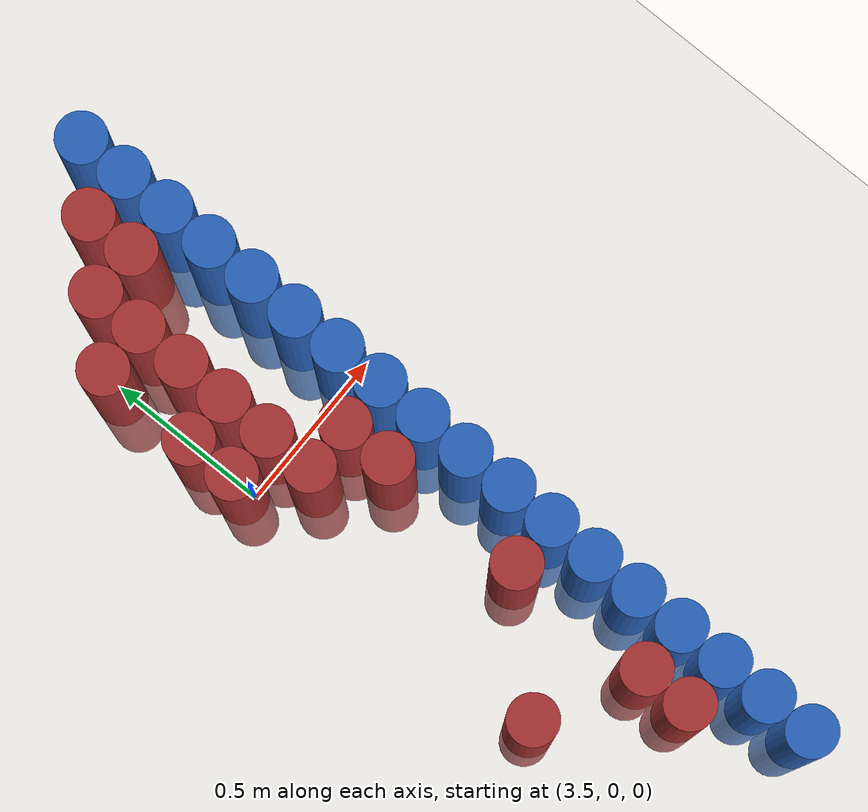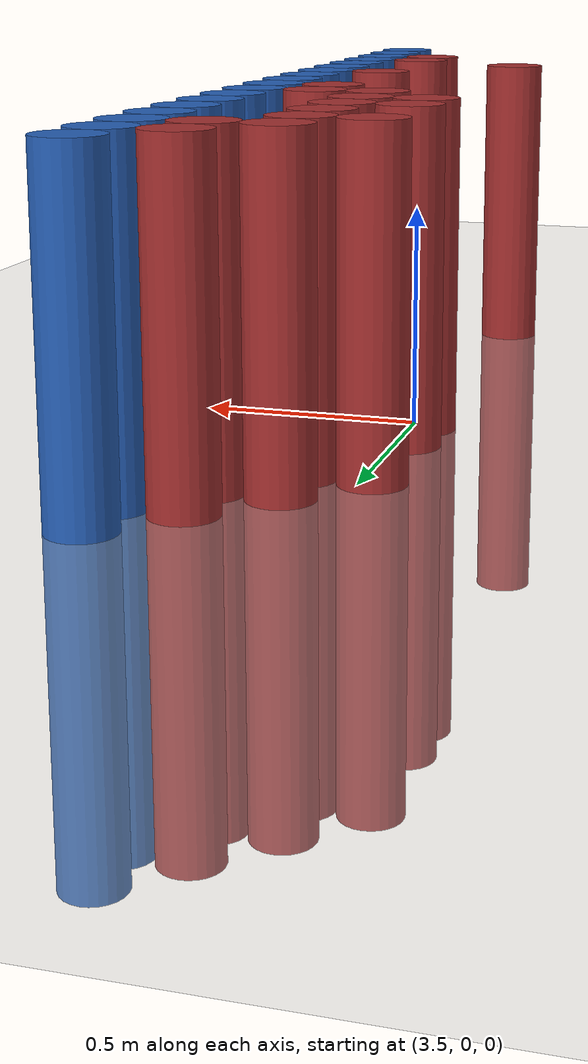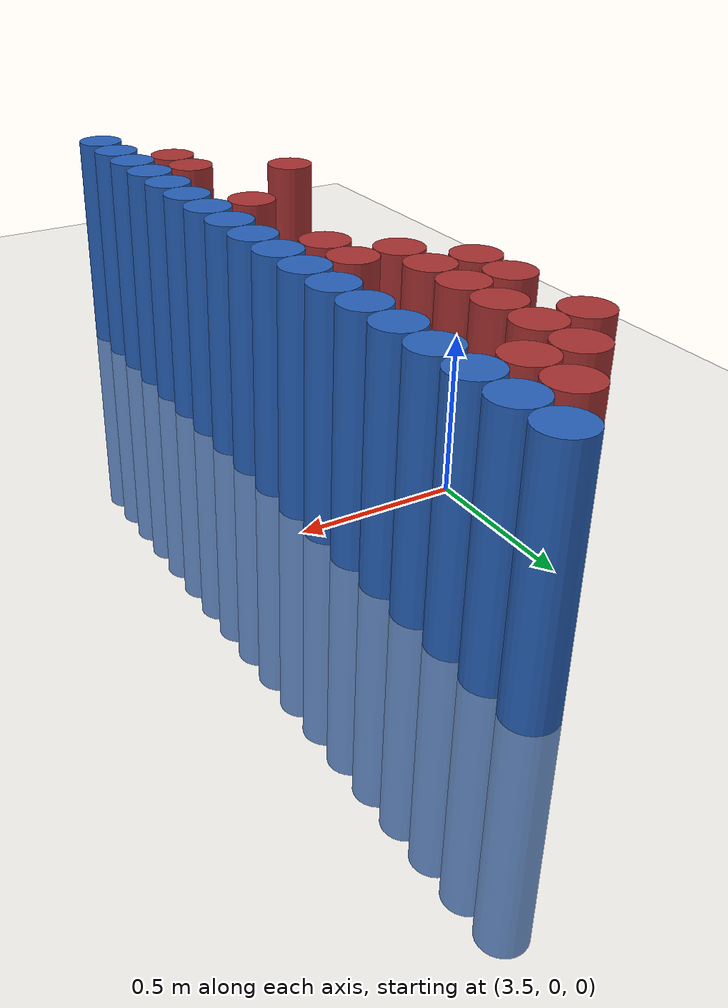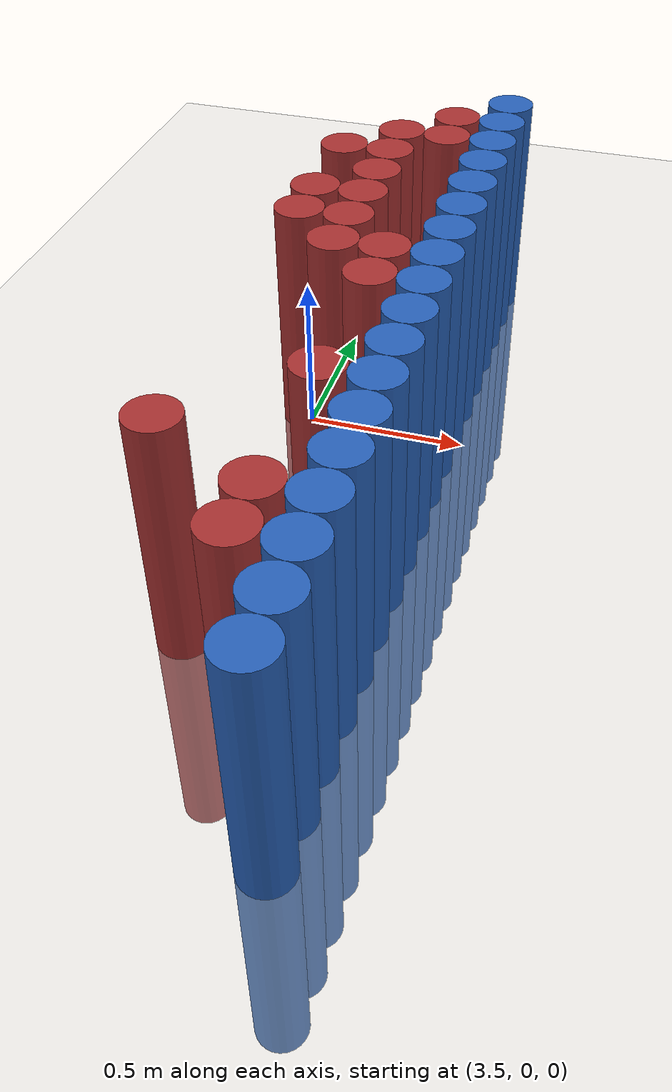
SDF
<sdf version="1.6">
 <world name="default">
  <model name="ground_plane">
   <static>1</static>
   <link name="link">
    <collision name="collision">
     <geometry><plane><normal>0 0 1</normal><size>100 100</size></plane></geometry>
     <surface><friction><ode><mu>100</mu><mu2>50</mu2></ode></friction></surface>
    </collision>
    <visual name="visual">
     <cast_shadows>0</cast_shadows>
     <geometry><plane><normal>0 0 1</normal><size>100 100</size></plane></geometry>
     <material>
      <script><uri>file://media/materials/scripts/gazebo.material</uri><name>Gazebo/Grey</name></script>
     </material>
    </visual>
   </link>
  </model>
  <model name="unit_cylinder_92">
   <static>1</static>
   <pose>3.925000 -1.625000 0.000000 0.000000 0.000000 0.000000</pose>
   <link name="link">
    <inertial>
     <mass>1</mass>
     <inertia><ixx>0.145833</ixx><ixy>0</ixy><ixz>0</ixz><iyy>0.145833</iyy><iyz>0</iyz><izz>0.125</izz></inertia>
    </inertial>
    <collision name="collision">
     <geometry><cylinder><radius>0.075000</radius><length>1.5</length></cylinder></geometry>
    </collision>
    <visual name="visual">
     <geometry><cylinder><radius>0.075000</radius><length>1.5</length></cylinder></geometry>
     <material>
      <ambient>0.152000 0.379000 0.720000 1</ambient>
      <diffuse>0.152000 0.379000 0.720000 1</diffuse>
     </material>
     <material>
      <script><name>Gazebo/Grey</name><uri>file://media/materials/scripts/gazebo.material</uri></script>
     </material>
    </visual>
   </link>
  </model>
  <model name="unit_cylinder_94">
   <static>1</static>
   <pose>3.925000 -1.475000 0.000000 0.000000 0.000000 0.000000</pose>
   <link name="link">
    <inertial>
     <mass>1</mass>
     <inertia><ixx>0.145833</ixx><ixy>0</ixy><ixz>0</ixz><iyy>0.145833</iyy><iyz>0</iyz><izz>0.125</izz></inertia>
    </inertial>
    <collision name="collision">
     <geometry><cylinder><radius>0.075000</radius><length>1.5</length></cylinder></geometry>
    </collision>
    <visual name="visual">
     <geometry><cylinder><radius>0.075000</radius><length>1.5</length></cylinder></geometry>
     <material>
      <ambient>0.152000 0.379000 0.720000 1</ambient>
      <diffuse>0.152000 0.379000 0.720000 1</diffuse>
     </material>
     <material>
      <script><name>Gazebo/Grey</name><uri>file://media/materials/scripts/gazebo.material</uri></script>
     </material>
    </visual>
   </link>
  </model>
  <model name="unit_cylinder_96">
   <static>1</static>
   <pose>3.925000 -1.325000 0.000000 0.000000 0.000000 0.000000</pose>
   <link name="link">
    <inertial>
     <mass>1</mass>
     <inertia><ixx>0.145833</ixx><ixy>0</ixy><ixz>0</ixz><iyy>0.145833</iyy><iyz>0</iyz><izz>0.125</izz></inertia>
    </inertial>
    <collision name="collision">
     <geometry><cylinder><radius>0.075000</radius><length>1.5</length></cylinder></geometry>
    </collision>
    <visual name="visual">
     <geometry><cylinder><radius>0.075000</radius><length>1.5</length></cylinder></geometry>
     <material>
      <ambient>0.152000 0.379000 0.720000 1</ambient>
      <diffuse>0.152000 0.379000 0.720000 1</diffuse>
     </material>
     <material>
      <script><name>Gazebo/Grey</name><uri>file://media/materials/scripts/gazebo.material</uri></script>
     </material>
    </visual>
   </link>
  </model>
  <model name="unit_cylinder_98">
   <static>1</static>
   <pose>3.925000 -1.175000 0.000000 0.000000 0.000000 0.000000</pose>
   <link name="link">
    <inertial>
     <mass>1</mass>
     <inertia><ixx>0.145833</ixx><ixy>0</ixy><ixz>0</ixz><iyy>0.145833</iyy><iyz>0</iyz><izz>0.125</izz></inertia>
    </inertial>
    <collision name="collision">
     <geometry><cylinder><radius>0.075000</radius><length>1.5</length></cylinder></geometry>
    </collision>
    <visual name="visual">
     <geometry><cylinder><radius>0.075000</radius><length>1.5</length></cylinder></geometry>
     <material>
      <ambient>0.152000 0.379000 0.720000 1</ambient>
      <diffuse>0.152000 0.379000 0.720000 1</diffuse>
     </material>
     <material>
      <script><name>Gazebo/Grey</name><uri>file://media/materials/scripts/gazebo.material</uri></script>
     </material>
    </visual>
   </link>
  </model>
  <model name="unit_cylinder_100">
   <static>1</static>
   <pose>3.925000 -1.025000 0.000000 0.000000 0.000000 0.000000</pose>
   <link name="link">
    <inertial>
     <mass>1</mass>
     <inertia><ixx>0.145833</ixx><ixy>0</ixy><ixz>0</ixz><iyy>0.145833</iyy><iyz>0</iyz><izz>0.125</izz></inertia>
    </inertial>
    <collision name="collision">
     <geometry><cylinder><radius>0.075000</radius><length>1.5</length></cylinder></geometry>
    </collision>
    <visual name="visual">
     <geometry><cylinder><radius>0.075000</radius><length>1.5</length></cylinder></geometry>
     <material>
      <ambient>0.152000 0.379000 0.720000 1</ambient>
      <diffuse>0.152000 0.379000 0.720000 1</diffuse>
     </material>
     <material>
      <script><name>Gazebo/Grey</name><uri>file://media/materials/scripts/gazebo.material</uri></script>
     </material>
    </visual>
   </link>
  </model>
  <model name="unit_cylinder_102">
   <static>1</static>
   <pose>3.925000 -0.875000 0.000000 0.000000 0.000000 0.000000</pose>
   <link name="link">
    <inertial>
     <mass>1</mass>
     <inertia><ixx>0.145833</ixx><ixy>0</ixy><ixz>0</ixz><iyy>0.145833</iyy><iyz>0</iyz><izz>0.125</izz></inertia>
    </inertial>
    <collision name="collision">
     <geometry><cylinder><radius>0.075000</radius><length>1.5</length></cylinder></geometry>
    </collision>
    <visual name="visual">
     <geometry><cylinder><radius>0.075000</radius><length>1.5</length></cylinder></geometry>
     <material>
      <ambient>0.152000 0.379000 0.720000 1</ambient>
      <diffuse>0.152000 0.379000 0.720000 1</diffuse>
     </material>
     <material>
      <script><name>Gazebo/Grey</name><uri>file://media/materials/scripts/gazebo.material</uri></script>
     </material>
    </visual>
   </link>
  </model>
  <model name="unit_cylinder_104">
   <static>1</static>
   <pose>3.925000 -0.725000 0.000000 0.000000 0.000000 0.000000</pose>
   <link name="link">
    <inertial>
     <mass>1</mass>
     <inertia><ixx>0.145833</ixx><ixy>0</ixy><ixz>0</ixz><iyy>0.145833</iyy><iyz>0</iyz><izz>0.125</izz></inertia>
    </inertial>
    <collision name="collision">
     <geometry><cylinder><radius>0.075000</radius><length>1.5</length></cylinder></geometry>
    </collision>
    <visual name="visual">
     <geometry><cylinder><radius>0.075000</radius><length>1.5</length></cylinder></geometry>
     <material>
      <ambient>0.152000 0.379000 0.720000 1</ambient>
      <diffuse>0.152000 0.379000 0.720000 1</diffuse>
     </material>
     <material>
      <script><name>Gazebo/Grey</name><uri>file://media/materials/scripts/gazebo.material</uri></script>
     </material>
    </visual>
   </link>
  </model>
  <model name="unit_cylinder_106">
   <static>1</static>
   <pose>3.925000 -0.575000 0.000000 0.000000 0.000000 0.000000</pose>
   <link name="link">
    <inertial>
     <mass>1</mass>
     <inertia><ixx>0.145833</ixx><ixy>0</ixy><ixz>0</ixz><iyy>0.145833</iyy><iyz>0</iyz><izz>0.125</izz></inertia>
    </inertial>
    <collision name="collision">
     <geometry><cylinder><radius>0.075000</radius><length>1.5</length></cylinder></geometry>
    </collision>
    <visual name="visual">
     <geometry><cylinder><radius>0.075000</radius><length>1.5</length></cylinder></geometry>
     <material>
      <ambient>0.152000 0.379000 0.720000 1</ambient>
      <diffuse>0.152000 0.379000 0.720000 1</diffuse>
     </material>
     <material>
      <script><name>Gazebo/Grey</name><uri>file://media/materials/scripts/gazebo.material</uri></script>
     </material>
    </visual>
   </link>
  </model>
  <model name="unit_cylinder_108">
   <static>1</static>
   <pose>3.925000 -0.425000 0.000000 0.000000 0.000000 0.000000</pose>
   <link name="link">
    <inertial>
     <mass>1</mass>
     <inertia><ixx>0.145833</ixx><ixy>0</ixy><ixz>0</ixz><iyy>0.145833</iyy><iyz>0</iyz><izz>0.125</izz></inertia>
    </inertial>
    <collision name="collision">
     <geometry><cylinder><radius>0.075000</radius><length>1.5</length></cylinder></geometry>
    </collision>
    <visual name="visual">
     <geometry><cylinder><radius>0.075000</radius><length>1.5</length></cylinder></geometry>
     <material>
      <ambient>0.152000 0.379000 0.720000 1</ambient>
      <diffuse>0.152000 0.379000 0.720000 1</diffuse>
     </material>
     <material>
      <script><name>Gazebo/Grey</name><uri>file://media/materials/scripts/gazebo.material</uri></script>
     </material>
    </visual>
   </link>
  </model>
  <model name="unit_cylinder_110">
   <static>1</static>
   <pose>3.925000 -0.275000 0.000000 0.000000 0.000000 0.000000</pose>
   <link name="link">
    <inertial>
     <mass>1</mass>
     <inertia><ixx>0.145833</ixx><ixy>0</ixy><ixz>0</ixz><iyy>0.145833</iyy><iyz>0</iyz><izz>0.125</izz></inertia>
    </inertial>
    <collision name="collision">
     <geometry><cylinder><radius>0.075000</radius><length>1.5</length></cylinder></geometry>
    </collision>
    <visual name="visual">
     <geometry><cylinder><radius>0.075000</radius><length>1.5</length></cylinder></geometry>
     <material>
      <ambient>0.152000 0.379000 0.720000 1</ambient>
      <diffuse>0.152000 0.379000 0.720000 1</diffuse>
     </material>
     <material>
      <script><name>Gazebo/Grey</name><uri>file://media/materials/scripts/gazebo.material</uri></script>
     </material>
    </visual>
   </link>
  </model>
  <model name="unit_cylinder_112">
   <static>1</static>
   <pose>3.925000 -0.125000 0.000000 0.000000 0.000000 0.000000</pose>
   <link name="link">
    <inertial>
     <mass>1</mass>
     <inertia><ixx>0.145833</ixx><ixy>0</ixy><ixz>0</ixz><iyy>0.145833</iyy><iyz>0</iyz><izz>0.125</izz></inertia>
    </inertial>
    <collision name="collision">
     <geometry><cylinder><radius>0.075000</radius><length>1.5</length></cylinder></geometry>
    </collision>
    <visual name="visual">
     <geometry><cylinder><radius>0.075000</radius><length>1.5</length></cylinder></geometry>
     <material>
      <ambient>0.152000 0.379000 0.720000 1</ambient>
      <diffuse>0.152000 0.379000 0.720000 1</diffuse>
     </material>
     <material>
      <script><name>Gazebo/Grey</name><uri>file://media/materials/scripts/gazebo.material</uri></script>
     </material>
    </visual>
   </link>
  </model>
  <model name="unit_cylinder_114">
   <static>1</static>
   <pose>3.925000 0.025000 0.000000 0.000000 0.000000 0.000000</pose>
   <link name="link">
    <inertial>
     <mass>1</mass>
     <inertia><ixx>0.145833</ixx><ixy>0</ixy><ixz>0</ixz><iyy>0.145833</iyy><iyz>0</iyz><izz>0.125</izz></inertia>
    </inertial>
    <collision name="collision">
     <geometry><cylinder><radius>0.075000</radius><length>1.5</length></cylinder></geometry>
    </collision>
    <visual name="visual">
     <geometry><cylinder><radius>0.075000</radius><length>1.5</length></cylinder></geometry>
     <material>
      <ambient>0.152000 0.379000 0.720000 1</ambient>
      <diffuse>0.152000 0.379000 0.720000 1</diffuse>
     </material>
     <material>
      <script><name>Gazebo/Grey</name><uri>file://media/materials/scripts/gazebo.material</uri></script>
     </material>
    </visual>
   </link>
  </model>
  <model name="unit_cylinder_116">
   <static>1</static>
   <pose>3.925000 0.175000 0.000000 0.000000 0.000000 0.000000</pose>
   <link name="link">
    <inertial>
     <mass>1</mass>
     <inertia><ixx>0.145833</ixx><ixy>0</ixy><ixz>0</ixz><iyy>0.145833</iyy><iyz>0</iyz><izz>0.125</izz></inertia>
    </inertial>
    <collision name="collision">
     <geometry><cylinder><radius>0.075000</radius><length>1.5</length></cylinder></geometry>
    </collision>
    <visual name="visual">
     <geometry><cylinder><radius>0.075000</radius><length>1.5</length></cylinder></geometry>
     <material>
      <ambient>0.152000 0.379000 0.720000 1</ambient>
      <diffuse>0.152000 0.379000 0.720000 1</diffuse>
     </material>
     <material>
      <script><name>Gazebo/Grey</name><uri>file://media/materials/scripts/gazebo.material</uri></script>
     </material>
    </visual>
   </link>
  </model>
  <model name="unit_cylinder_118">
   <static>1</static>
   <pose>3.925000 0.325000 0.000000 0.000000 0.000000 0.000000</pose>
   <link name="link">
    <inertial>
     <mass>1</mass>
     <inertia><ixx>0.145833</ixx><ixy>0</ixy><ixz>0</ixz><iyy>0.145833</iyy><iyz>0</iyz><izz>0.125</izz></inertia>
    </inertial>
    <collision name="collision">
     <geometry><cylinder><radius>0.075000</radius><length>1.5</length></cylinder></geometry>
    </collision>
    <visual name="visual">
     <geometry><cylinder><radius>0.075000</radius><length>1.5</length></cylinder></geometry>
     <material>
      <ambient>0.152000 0.379000 0.720000 1</ambient>
      <diffuse>0.152000 0.379000 0.720000 1</diffuse>
     </material>
     <material>
      <script><name>Gazebo/Grey</name><uri>file://media/materials/scripts/gazebo.material</uri></script>
     </material>
    </visual>
   </link>
  </model>
  <model name="unit_cylinder_120">
   <static>1</static>
   <pose>3.925000 0.475000 0.000000 0.000000 0.000000 0.000000</pose>
   <link name="link">
    <inertial>
     <mass>1</mass>
     <inertia><ixx>0.145833</ixx><ixy>0</ixy><ixz>0</ixz><iyy>0.145833</iyy><iyz>0</iyz><izz>0.125</izz></inertia>
    </inertial>
    <collision name="collision">
     <geometry><cylinder><radius>0.075000</radius><length>1.5</length></cylinder></geometry>
    </collision>
    <visual name="visual">
     <geometry><cylinder><radius>0.075000</radius><length>1.5</length></cylinder></geometry>
     <material>
      <ambient>0.152000 0.379000 0.720000 1</ambient>
      <diffuse>0.152000 0.379000 0.720000 1</diffuse>
     </material>
     <material>
      <script><name>Gazebo/Grey</name><uri>file://media/materials/scripts/gazebo.material</uri></script>
     </material>
    </visual>
   </link>
  </model>
  <model name="unit_cylinder_122">
   <static>1</static>
   <pose>3.925000 0.625000 0.000000 0.000000 0.000000 0.000000</pose>
   <link name="link">
    <inertial>
     <mass>1</mass>
     <inertia><ixx>0.145833</ixx><ixy>0</ixy><ixz>0</ixz><iyy>0.145833</iyy><iyz>0</iyz><izz>0.125</izz></inertia>
    </inertial>
    <collision name="collision">
     <geometry><cylinder><radius>0.075000</radius><length>1.5</length></cylinder></geometry>
    </collision>
    <visual name="visual">
     <geometry><cylinder><radius>0.075000</radius><length>1.5</length></cylinder></geometry>
     <material>
      <ambient>0.152000 0.379000 0.720000 1</ambient>
      <diffuse>0.152000 0.379000 0.720000 1</diffuse>
     </material>
     <material>
      <script><name>Gazebo/Grey</name><uri>file://media/materials/scripts/gazebo.material</uri></script>
     </material>
    </visual>
   </link>
  </model>
  <model name="unit_cylinder_124">
   <static>1</static>
   <pose>3.925000 0.775000 0.000000 0.000000 0.000000 0.000000</pose>
   <link name="link">
    <inertial>
     <mass>1</mass>
     <inertia><ixx>0.145833</ixx><ixy>0</ixy><ixz>0</ixz><iyy>0.145833</iyy><iyz>0</iyz><izz>0.125</izz></inertia>
    </inertial>
    <collision name="collision">
     <geometry><cylinder><radius>0.075000</radius><length>1.5</length></cylinder></geometry>
    </collision>
    <visual name="visual">
     <geometry><cylinder><radius>0.075000</radius><length>1.5</length></cylinder></geometry>
     <material>
      <ambient>0.152000 0.379000 0.720000 1</ambient>
      <diffuse>0.152000 0.379000 0.720000 1</diffuse>
     </material>
     <material>
      <script><name>Gazebo/Grey</name><uri>file://media/materials/scripts/gazebo.material</uri></script>
     </material>
    </visual>
   </link>
  </model>
  <model name="unit_cylinder_126">
   <static>1</static>
   <pose>3.925000 0.925000 0.000000 0.000000 0.000000 0.000000</pose>
   <link name="link">
    <inertial>
     <mass>1</mass>
     <inertia><ixx>0.145833</ixx><ixy>0</ixy><ixz>0</ixz><iyy>0.145833</iyy><iyz>0</iyz><izz>0.125</izz></inertia>
    </inertial>
    <collision name="collision">
     <geometry><cylinder><radius>0.075000</radius><length>1.5</length></cylinder></geometry>
    </collision>
    <visual name="visual">
     <geometry><cylinder><radius>0.075000</radius><length>1.5</length></cylinder></geometry>
     <material>
      <ambient>0.152000 0.379000 0.720000 1</ambient>
      <diffuse>0.152000 0.379000 0.720000 1</diffuse>
     </material>
     <material>
      <script><name>Gazebo/Grey</name><uri>file://media/materials/scripts/gazebo.material</uri></script>
     </material>
    </visual>
   </link>
  </model>
  <model name="unit_cylinder_589">
   <static>1</static>
   <pose>3.475000 -1.025000 0.000000 0.000000 0.000000 0.000000</pose>
   <link name="link">
    <inertial>
     <mass>1</mass>
     <inertia><ixx>0.145833</ixx><ixy>0</ixy><ixz>0</ixz><iyy>0.145833</iyy><iyz>0</iyz><izz>0.125</izz></inertia>
    </inertial>
    <collision name="collision">
     <geometry><cylinder><radius>0.075000</radius><length>1.5</length></cylinder></geometry>
    </collision>
    <visual name="visual">
     <geometry><cylinder><radius>0.075000</radius><length>1.5</length></cylinder></geometry>
     <material>
      <ambient>0.648000 0.192000 0.192000 1</ambient>
      <diffuse>0.648000 0.192000 0.192000 1</diffuse>
     </material>
     <material>
      <script><name>Gazebo/Grey</name><uri>file://media/materials/scripts/gazebo.material</uri></script>
     </material>
    </visual>
   </link>
  </model>
  <model name="unit_cylinder_590">
   <static>1</static>
   <pose>3.475000 0.025000 0.000000 0.000000 0.000000 0.000000</pose>
   <link name="link">
    <inertial>
     <mass>1</mass>
     <inertia><ixx>0.145833</ixx><ixy>0</ixy><ixz>0</ixz><iyy>0.145833</iyy><iyz>0</iyz><izz>0.125</izz></inertia>
    </inertial>
    <collision name="collision">
     <geometry><cylinder><radius>0.075000</radius><length>1.5</length></cylinder></geometry>
    </collision>
    <visual name="visual">
     <geometry><cylinder><radius>0.075000</radius><length>1.5</length></cylinder></geometry>
     <material>
      <ambient>0.648000 0.192000 0.192000 1</ambient>
      <diffuse>0.648000 0.192000 0.192000 1</diffuse>
     </material>
     <material>
      <script><name>Gazebo/Grey</name><uri>file://media/materials/scripts/gazebo.material</uri></script>
     </material>
    </visual>
   </link>
  </model>
  <model name="unit_cylinder_591">
   <static>1</static>
   <pose>3.475000 0.175000 0.000000 0.000000 0.000000 0.000000</pose>
   <link name="link">
    <inertial>
     <mass>1</mass>
     <inertia><ixx>0.145833</ixx><ixy>0</ixy><ixz>0</ixz><iyy>0.145833</iyy><iyz>0</iyz><izz>0.125</izz></inertia>
    </inertial>
    <collision name="collision">
     <geometry><cylinder><radius>0.075000</radius><length>1.5</length></cylinder></geometry>
    </collision>
    <visual name="visual">
     <geometry><cylinder><radius>0.075000</radius><length>1.5</length></cylinder></geometry>
     <material>
      <ambient>0.648000 0.192000 0.192000 1</ambient>
      <diffuse>0.648000 0.192000 0.192000 1</diffuse>
     </material>
     <material>
      <script><name>Gazebo/Grey</name><uri>file://media/materials/scripts/gazebo.material</uri></script>
     </material>
    </visual>
   </link>
  </model>
  <model name="unit_cylinder_592">
   <static>1</static>
   <pose>3.475000 0.475000 0.000000 0.000000 0.000000 0.000000</pose>
   <link name="link">
    <inertial>
     <mass>1</mass>
     <inertia><ixx>0.145833</ixx><ixy>0</ixy><ixz>0</ixz><iyy>0.145833</iyy><iyz>0</iyz><izz>0.125</izz></inertia>
    </inertial>
    <collision name="collision">
     <geometry><cylinder><radius>0.075000</radius><length>1.5</length></cylinder></geometry>
    </collision>
    <visual name="visual">
     <geometry><cylinder><radius>0.075000</radius><length>1.5</length></cylinder></geometry>
     <material>
      <ambient>0.648000 0.192000 0.192000 1</ambient>
      <diffuse>0.648000 0.192000 0.192000 1</diffuse>
     </material>
     <material>
      <script><name>Gazebo/Grey</name><uri>file://media/materials/scripts/gazebo.material</uri></script>
     </material>
    </visual>
   </link>
  </model>
  <model name="unit_cylinder_593">
   <static>1</static>
   <pose>3.625000 -0.125000 0.000000 0.000000 0.000000 0.000000</pose>
   <link name="link">
    <inertial>
     <mass>1</mass>
     <inertia><ixx>0.145833</ixx><ixy>0</ixy><ixz>0</ixz><iyy>0.145833</iyy><iyz>0</iyz><izz>0.125</izz></inertia>
    </inertial>
    <collision name="collision">
     <geometry><cylinder><radius>0.075000</radius><length>1.5</length></cylinder></geometry>
    </collision>
    <visual name="visual">
     <geometry><cylinder><radius>0.075000</radius><length>1.5</length></cylinder></geometry>
     <material>
      <ambient>0.648000 0.192000 0.192000 1</ambient>
      <diffuse>0.648000 0.192000 0.192000 1</diffuse>
     </material>
     <material>
      <script><name>Gazebo/Grey</name><uri>file://media/materials/scripts/gazebo.material</uri></script>
     </material>
    </visual>
   </link>
  </model>
  <model name="unit_cylinder_594">
   <static>1</static>
   <pose>3.625000 0.025000 0.000000 0.000000 0.000000 0.000000</pose>
   <link name="link">
    <inertial>
     <mass>1</mass>
     <inertia><ixx>0.145833</ixx><ixy>0</ixy><ixz>0</ixz><iyy>0.145833</iyy><iyz>0</iyz><izz>0.125</izz></inertia>
    </inertial>
    <collision name="collision">
     <geometry><cylinder><radius>0.075000</radius><length>1.5</length></cylinder></geometry>
    </collision>
    <visual name="visual">
     <geometry><cylinder><radius>0.075000</radius><length>1.5</length></cylinder></geometry>
     <material>
      <ambient>0.648000 0.192000 0.192000 1</ambient>
      <diffuse>0.648000 0.192000 0.192000 1</diffuse>
     </material>
     <material>
      <script><name>Gazebo/Grey</name><uri>file://media/materials/scripts/gazebo.material</uri></script>
     </material>
    </visual>
   </link>
  </model>
  <model name="unit_cylinder_595">
   <static>1</static>
   <pose>3.625000 0.175000 0.000000 0.000000 0.000000 0.000000</pose>
   <link name="link">
    <inertial>
     <mass>1</mass>
     <inertia><ixx>0.145833</ixx><ixy>0</ixy><ixz>0</ixz><iyy>0.145833</iyy><iyz>0</iyz><izz>0.125</izz></inertia>
    </inertial>
    <collision name="collision">
     <geometry><cylinder><radius>0.075000</radius><length>1.5</length></cylinder></geometry>
    </collision>
    <visual name="visual">
     <geometry><cylinder><radius>0.075000</radius><length>1.5</length></cylinder></geometry>
     <material>
      <ambient>0.648000 0.192000 0.192000 1</ambient>
      <diffuse>0.648000 0.192000 0.192000 1</diffuse>
     </material>
     <material>
      <script><name>Gazebo/Grey</name><uri>file://media/materials/scripts/gazebo.material</uri></script>
     </material>
    </visual>
   </link>
  </model>
  <model name="unit_cylinder_596">
   <static>1</static>
   <pose>3.625000 0.325000 0.000000 0.000000 0.000000 0.000000</pose>
   <link name="link">
    <inertial>
     <mass>1</mass>
     <inertia><ixx>0.145833</ixx><ixy>0</ixy><ixz>0</ixz><iyy>0.145833</iyy><iyz>0</iyz><izz>0.125</izz></inertia>
    </inertial>
    <collision name="collision">
     <geometry><cylinder><radius>0.075000</radius><length>1.5</length></cylinder></geometry>
    </collision>
    <visual name="visual">
     <geometry><cylinder><radius>0.075000</radius><length>1.5</length></cylinder></geometry>
     <material>
      <ambient>0.648000 0.192000 0.192000 1</ambient>
      <diffuse>0.648000 0.192000 0.192000 1</diffuse>
     </material>
     <material>
      <script><name>Gazebo/Grey</name><uri>file://media/materials/scripts/gazebo.material</uri></script>
     </material>
    </visual>
   </link>
  </model>
  <model name="unit_cylinder_597">
   <static>1</static>
   <pose>3.625000 0.475000 0.000000 0.000000 0.000000 0.000000</pose>
   <link name="link">
    <inertial>
     <mass>1</mass>
     <inertia><ixx>0.145833</ixx><ixy>0</ixy><ixz>0</ixz><iyy>0.145833</iyy><iyz>0</iyz><izz>0.125</izz></inertia>
    </inertial>
    <collision name="collision">
     <geometry><cylinder><radius>0.075000</radius><length>1.5</length></cylinder></geometry>
    </collision>
    <visual name="visual">
     <geometry><cylinder><radius>0.075000</radius><length>1.5</length></cylinder></geometry>
     <material>
      <ambient>0.648000 0.192000 0.192000 1</ambient>
      <diffuse>0.648000 0.192000 0.192000 1</diffuse>
     </material>
     <material>
      <script><name>Gazebo/Grey</name><uri>file://media/materials/scripts/gazebo.material</uri></script>
     </material>
    </visual>
   </link>
  </model>
  <model name="unit_cylinder_598">
   <static>1</static>
   <pose>3.625000 0.625000 0.000000 0.000000 0.000000 0.000000</pose>
   <link name="link">
    <inertial>
     <mass>1</mass>
     <inertia><ixx>0.145833</ixx><ixy>0</ixy><ixz>0</ixz><iyy>0.145833</iyy><iyz>0</iyz><izz>0.125</izz></inertia>
    </inertial>
    <collision name="collision">
     <geometry><cylinder><radius>0.075000</radius><length>1.5</length></cylinder></geometry>
    </collision>
    <visual name="visual">
     <geometry><cylinder><radius>0.075000</radius><length>1.5</length></cylinder></geometry>
     <material>
      <ambient>0.648000 0.192000 0.192000 1</ambient>
      <diffuse>0.648000 0.192000 0.192000 1</diffuse>
     </material>
     <material>
      <script><name>Gazebo/Grey</name><uri>file://media/materials/scripts/gazebo.material</uri></script>
     </material>
    </visual>
   </link>
  </model>
  <model name="unit_cylinder_602">
   <static>1</static>
   <pose>3.775000 -1.325000 0.000000 0.000000 0.000000 0.000000</pose>
   <link name="link">
    <inertial>
     <mass>1</mass>
     <inertia><ixx>0.145833</ixx><ixy>0</ixy><ixz>0</ixz><iyy>0.145833</iyy><iyz>0</iyz><izz>0.125</izz></inertia>
    </inertial>
    <collision name="collision">
     <geometry><cylinder><radius>0.075000</radius><length>1.5</length></cylinder></geometry>
    </collision>
    <visual name="visual">
     <geometry><cylinder><radius>0.075000</radius><length>1.5</length></cylinder></geometry>
     <material>
      <ambient>0.648000 0.192000 0.192000 1</ambient>
      <diffuse>0.648000 0.192000 0.192000 1</diffuse>
     </material>
     <material>
      <script><name>Gazebo/Grey</name><uri>file://media/materials/scripts/gazebo.material</uri></script>
     </material>
    </visual>
   </link>
  </model>
  <model name="unit_cylinder_603">
   <static>1</static>
   <pose>3.775000 -1.175000 0.000000 0.000000 0.000000 0.000000</pose>
   <link name="link">
    <inertial>
     <mass>1</mass>
     <inertia><ixx>0.145833</ixx><ixy>0</ixy><ixz>0</ixz><iyy>0.145833</iyy><iyz>0</iyz><izz>0.125</izz></inertia>
    </inertial>
    <collision name="collision">
     <geometry><cylinder><radius>0.075000</radius><length>1.5</length></cylinder></geometry>
    </collision>
    <visual name="visual">
     <geometry><cylinder><radius>0.075000</radius><length>1.5</length></cylinder></geometry>
     <material>
      <ambient>0.648000 0.192000 0.192000 1</ambient>
      <diffuse>0.648000 0.192000 0.192000 1</diffuse>
     </material>
     <material>
      <script><name>Gazebo/Grey</name><uri>file://media/materials/scripts/gazebo.material</uri></script>
     </material>
    </visual>
   </link>
  </model>
  <model name="unit_cylinder_604">
   <static>1</static>
   <pose>3.775000 -0.725000 0.000000 0.000000 0.000000 0.000000</pose>
   <link name="link">
    <inertial>
     <mass>1</mass>
     <inertia><ixx>0.145833</ixx><ixy>0</ixy><ixz>0</ixz><iyy>0.145833</iyy><iyz>0</iyz><izz>0.125</izz></inertia>
    </inertial>
    <collision name="collision">
     <geometry><cylinder><radius>0.075000</radius><length>1.5</length></cylinder></geometry>
    </collision>
    <visual name="visual">
     <geometry><cylinder><radius>0.075000</radius><length>1.5</length></cylinder></geometry>
     <material>
      <ambient>0.648000 0.192000 0.192000 1</ambient>
      <diffuse>0.648000 0.192000 0.192000 1</diffuse>
     </material>
     <material>
      <script><name>Gazebo/Grey</name><uri>file://media/materials/scripts/gazebo.material</uri></script>
     </material>
    </visual>
   </link>
  </model>
  <model name="unit_cylinder_605">
   <static>1</static>
   <pose>3.775000 -0.275000 0.000000 0.000000 0.000000 0.000000</pose>
   <link name="link">
    <inertial>
     <mass>1</mass>
     <inertia><ixx>0.145833</ixx><ixy>0</ixy><ixz>0</ixz><iyy>0.145833</iyy><iyz>0</iyz><izz>0.125</izz></inertia>
    </inertial>
    <collision name="collision">
     <geometry><cylinder><radius>0.075000</radius><length>1.5</length></cylinder></geometry>
    </collision>
    <visual name="visual">
     <geometry><cylinder><radius>0.075000</radius><length>1.5</length></cylinder></geometry>
     <material>
      <ambient>0.648000 0.192000 0.192000 1</ambient>
      <diffuse>0.648000 0.192000 0.192000 1</diffuse>
     </material>
     <material>
      <script><name>Gazebo/Grey</name><uri>file://media/materials/scripts/gazebo.material</uri></script>
     </material>
    </visual>
   </link>
  </model>
  <model name="unit_cylinder_606">
   <static>1</static>
   <pose>3.775000 -0.125000 0.000000 0.000000 0.000000 0.000000</pose>
   <link name="link">
    <inertial>
     <mass>1</mass>
     <inertia><ixx>0.145833</ixx><ixy>0</ixy><ixz>0</ixz><iyy>0.145833</iyy><iyz>0</iyz><izz>0.125</izz></inertia>
    </inertial>
    <collision name="collision">
     <geometry><cylinder><radius>0.075000</radius><length>1.5</length></cylinder></geometry>
    </collision>
    <visual name="visual">
     <geometry><cylinder><radius>0.075000</radius><length>1.5</length></cylinder></geometry>
     <material>
      <ambient>0.648000 0.192000 0.192000 1</ambient>
      <diffuse>0.648000 0.192000 0.192000 1</diffuse>
     </material>
     <material>
      <script><name>Gazebo/Grey</name><uri>file://media/materials/scripts/gazebo.material</uri></script>
     </material>
    </visual>
   </link>
  </model>
  <model name="unit_cylinder_607">
   <static>1</static>
   <pose>3.775000 0.625000 0.000000 0.000000 0.000000 0.000000</pose>
   <link name="link">
    <inertial>
     <mass>1</mass>
     <inertia><ixx>0.145833</ixx><ixy>0</ixy><ixz>0</ixz><iyy>0.145833</iyy><iyz>0</iyz><izz>0.125</izz></inertia>
    </inertial>
    <collision name="collision">
     <geometry><cylinder><radius>0.075000</radius><length>1.5</length></cylinder></geometry>
    </collision>
    <visual name="visual">
     <geometry><cylinder><radius>0.075000</radius><length>1.5</length></cylinder></geometry>
     <material>
      <ambient>0.648000 0.192000 0.192000 1</ambient>
      <diffuse>0.648000 0.192000 0.192000 1</diffuse>
     </material>
     <material>
      <script><name>Gazebo/Grey</name><uri>file://media/materials/scripts/gazebo.material</uri></script>
     </material>
    </visual>
   </link>
  </model>
  <model name="unit_cylinder_608">
   <static>1</static>
   <pose>3.775000 0.775000 0.000000 0.000000 0.000000 0.000000</pose>
   <link name="link">
    <inertial>
     <mass>1</mass>
     <inertia><ixx>0.145833</ixx><ixy>0</ixy><ixz>0</ixz><iyy>0.145833</iyy><iyz>0</iyz><izz>0.125</izz></inertia>
    </inertial>
    <collision name="collision">
     <geometry><cylinder><radius>0.075000</radius><length>1.5</length></cylinder></geometry>
    </collision>
    <visual name="visual">
     <geometry><cylinder><radius>0.075000</radius><length>1.5</length></cylinder></geometry>
     <material>
      <ambient>0.648000 0.192000 0.192000 1</ambient>
      <diffuse>0.648000 0.192000 0.192000 1</diffuse>
     </material>
     <material>
      <script><name>Gazebo/Grey</name><uri>file://media/materials/scripts/gazebo.material</uri></script>
     </material>
    </visual>
   </link>
  </model>
  <model name="unit_cylinder_624">
   <static>1</static>
   <pose>3.925000 -1.625000 0.000000 0.000000 0.000000 0.000000</pose>
   <link name="link">
    <inertial>
     <mass>1</mass>
     <inertia><ixx>0.145833</ixx><ixy>0</ixy><ixz>0</ixz><iyy>0.145833</iyy><iyz>0</iyz><izz>0.125</izz></inertia>
    </inertial>
    <collision name="collision">
     <geometry><cylinder><radius>0.075000</radius><length>1.5</length></cylinder></geometry>
    </collision>
    <visual name="visual">
     <geometry><cylinder><radius>0.075000</radius><length>1.5</length></cylinder></geometry>
     <material>
      <ambient>0.152000 0.379000 0.720000 1</ambient>
      <diffuse>0.152000 0.379000 0.720000 1</diffuse>
     </material>
     <material>
      <script><name>Gazebo/Grey</name><uri>file://media/materials/scripts/gazebo.material</uri></script>
     </material>
    </visual>
   </link>
  </model>
  <model name="unit_cylinder_625">
   <static>1</static>
   <pose>3.925000 -1.475000 0.000000 0.000000 0.000000 0.000000</pose>
   <link name="link">
    <inertial>
     <mass>1</mass>
     <inertia><ixx>0.145833</ixx><ixy>0</ixy><ixz>0</ixz><iyy>0.145833</iyy><iyz>0</iyz><izz>0.125</izz></inertia>
    </inertial>
    <collision name="collision">
     <geometry><cylinder><radius>0.075000</radius><length>1.5</length></cylinder></geometry>
    </collision>
    <visual name="visual">
     <geometry><cylinder><radius>0.075000</radius><length>1.5</length></cylinder></geometry>
     <material>
      <ambient>0.152000 0.379000 0.720000 1</ambient>
      <diffuse>0.152000 0.379000 0.720000 1</diffuse>
     </material>
     <material>
      <script><name>Gazebo/Grey</name><uri>file://media/materials/scripts/gazebo.material</uri></script>
     </material>
    </visual>
   </link>
  </model>
  <model name="unit_cylinder_626">
   <static>1</static>
   <pose>3.925000 -1.325000 0.000000 0.000000 0.000000 0.000000</pose>
   <link name="link">
    <inertial>
     <mass>1</mass>
     <inertia><ixx>0.145833</ixx><ixy>0</ixy><ixz>0</ixz><iyy>0.145833</iyy><iyz>0</iyz><izz>0.125</izz></inertia>
    </inertial>
    <collision name="collision">
     <geometry><cylinder><radius>0.075000</radius><length>1.5</length></cylinder></geometry>
    </collision>
    <visual name="visual">
     <geometry><cylinder><radius>0.075000</radius><length>1.5</length></cylinder></geometry>
     <material>
      <ambient>0.152000 0.379000 0.720000 1</ambient>
      <diffuse>0.152000 0.379000 0.720000 1</diffuse>
     </material>
     <material>
      <script><name>Gazebo/Grey</name><uri>file://media/materials/scripts/gazebo.material</uri></script>
     </material>
    </visual>
   </link>
  </model>
  <model name="unit_cylinder_627">
   <static>1</static>
   <pose>3.925000 -1.175000 0.000000 0.000000 0.000000 0.000000</pose>
   <link name="link">
    <inertial>
     <mass>1</mass>
     <inertia><ixx>0.145833</ixx><ixy>0</ixy><ixz>0</ixz><iyy>0.145833</iyy><iyz>0</iyz><izz>0.125</izz></inertia>
    </inertial>
    <collision name="collision">
     <geometry><cylinder><radius>0.075000</radius><length>1.5</length></cylinder></geometry>
    </collision>
    <visual name="visual">
     <geometry><cylinder><radius>0.075000</radius><length>1.5</length></cylinder></geometry>
     <material>
      <ambient>0.152000 0.379000 0.720000 1</ambient>
      <diffuse>0.152000 0.379000 0.720000 1</diffuse>
     </material>
     <material>
      <script><name>Gazebo/Grey</name><uri>file://media/materials/scripts/gazebo.material</uri></script>
     </material>
    </visual>
   </link>
  </model>
  <model name="unit_cylinder_628">
   <static>1</static>
   <pose>3.925000 -1.025000 0.000000 0.000000 0.000000 0.000000</pose>
   <link name="link">
    <inertial>
     <mass>1</mass>
     <inertia><ixx>0.145833</ixx><ixy>0</ixy><ixz>0</ixz><iyy>0.145833</iyy><iyz>0</iyz><izz>0.125</izz></inertia>
    </inertial>
    <collision name="collision">
     <geometry><cylinder><radius>0.075000</radius><length>1.5</length></cylinder></geometry>
    </collision>
    <visual name="visual">
     <geometry><cylinder><radius>0.075000</radius><length>1.5</length></cylinder></geometry>
     <material>
      <ambient>0.152000 0.379000 0.720000 1</ambient>
      <diffuse>0.152000 0.379000 0.720000 1</diffuse>
     </material>
     <material>
      <script><name>Gazebo/Grey</name><uri>file://media/materials/scripts/gazebo.material</uri></script>
     </material>
    </visual>
   </link>
  </model>
  <model name="unit_cylinder_629">
   <static>1</static>
   <pose>3.925000 -0.875000 0.000000 0.000000 0.000000 0.000000</pose>
   <link name="link">
    <inertial>
     <mass>1</mass>
     <inertia><ixx>0.145833</ixx><ixy>0</ixy><ixz>0</ixz><iyy>0.145833</iyy><iyz>0</iyz><izz>0.125</izz></inertia>
    </inertial>
    <collision name="collision">
     <geometry><cylinder><radius>0.075000</radius><length>1.5</length></cylinder></geometry>
    </collision>
    <visual name="visual">
     <geometry><cylinder><radius>0.075000</radius><length>1.5</length></cylinder></geometry>
     <material>
      <ambient>0.152000 0.379000 0.720000 1</ambient>
      <diffuse>0.152000 0.379000 0.720000 1</diffuse>
     </material>
     <material>
      <script><name>Gazebo/Grey</name><uri>file://media/materials/scripts/gazebo.material</uri></script>
     </material>
    </visual>
   </link>
  </model>
  <model name="unit_cylinder_630">
   <static>1</static>
   <pose>3.925000 -0.725000 0.000000 0.000000 0.000000 0.000000</pose>
   <link name="link">
    <inertial>
     <mass>1</mass>
     <inertia><ixx>0.145833</ixx><ixy>0</ixy><ixz>0</ixz><iyy>0.145833</iyy><iyz>0</iyz><izz>0.125</izz></inertia>
    </inertial>
    <collision name="collision">
     <geometry><cylinder><radius>0.075000</radius><length>1.5</length></cylinder></geometry>
    </collision>
    <visual name="visual">
     <geometry><cylinder><radius>0.075000</radius><length>1.5</length></cylinder></geometry>
     <material>
      <ambient>0.152000 0.379000 0.720000 1</ambient>
      <diffuse>0.152000 0.379000 0.720000 1</diffuse>
     </material>
     <material>
      <script><name>Gazebo/Grey</name><uri>file://media/materials/scripts/gazebo.material</uri></script>
     </material>
    </visual>
   </link>
  </model>
  <model name="unit_cylinder_631">
   <static>1</static>
   <pose>3.925000 -0.575000 0.000000 0.000000 0.000000 0.000000</pose>
   <link name="link">
    <inertial>
     <mass>1</mass>
     <inertia><ixx>0.145833</ixx><ixy>0</ixy><ixz>0</ixz><iyy>0.145833</iyy><iyz>0</iyz><izz>0.125</izz></inertia>
    </inertial>
    <collision name="collision">
     <geometry><cylinder><radius>0.075000</radius><length>1.5</length></cylinder></geometry>
    </collision>
    <visual name="visual">
     <geometry><cylinder><radius>0.075000</radius><length>1.5</length></cylinder></geometry>
     <material>
      <ambient>0.152000 0.379000 0.720000 1</ambient>
      <diffuse>0.152000 0.379000 0.720000 1</diffuse>
     </material>
     <material>
      <script><name>Gazebo/Grey</name><uri>file://media/materials/scripts/gazebo.material</uri></script>
     </material>
    </visual>
   </link>
  </model>
  <model name="unit_cylinder_632">
   <static>1</static>
   <pose>3.925000 -0.425000 0.000000 0.000000 0.000000 0.000000</pose>
   <link name="link">
    <inertial>
     <mass>1</mass>
     <inertia><ixx>0.145833</ixx><ixy>0</ixy><ixz>0</ixz><iyy>0.145833</iyy><iyz>0</iyz><izz>0.125</izz></inertia>
    </inertial>
    <collision name="collision">
     <geometry><cylinder><radius>0.075000</radius><length>1.5</length></cylinder></geometry>
    </collision>
    <visual name="visual">
     <geometry><cylinder><radius>0.075000</radius><length>1.5</length></cylinder></geometry>
     <material>
      <ambient>0.152000 0.379000 0.720000 1</ambient>
      <diffuse>0.152000 0.379000 0.720000 1</diffuse>
     </material>
     <material>
      <script><name>Gazebo/Grey</name><uri>file://media/materials/scripts/gazebo.material</uri></script>
     </material>
    </visual>
   </link>
  </model>
  <model name="unit_cylinder_633">
   <static>1</static>
   <pose>3.925000 -0.275000 0.000000 0.000000 0.000000 0.000000</pose>
   <link name="link">
    <inertial>
     <mass>1</mass>
     <inertia><ixx>0.145833</ixx><ixy>0</ixy><ixz>0</ixz><iyy>0.145833</iyy><iyz>0</iyz><izz>0.125</izz></inertia>
    </inertial>
    <collision name="collision">
     <geometry><cylinder><radius>0.075000</radius><length>1.5</length></cylinder></geometry>
    </collision>
    <visual name="visual">
     <geometry><cylinder><radius>0.075000</radius><length>1.5</length></cylinder></geometry>
     <material>
      <ambient>0.152000 0.379000 0.720000 1</ambient>
      <diffuse>0.152000 0.379000 0.720000 1</diffuse>
     </material>
     <material>
      <script><name>Gazebo/Grey</name><uri>file://media/materials/scripts/gazebo.material</uri></script>
     </material>
    </visual>
   </link>
  </model>
  <model name="unit_cylinder_634">
   <static>1</static>
   <pose>3.925000 -0.125000 0.000000 0.000000 0.000000 0.000000</pose>
   <link name="link">
    <inertial>
     <mass>1</mass>
     <inertia><ixx>0.145833</ixx><ixy>0</ixy><ixz>0</ixz><iyy>0.145833</iyy><iyz>0</iyz><izz>0.125</izz></inertia>
    </inertial>
    <collision name="collision">
     <geometry><cylinder><radius>0.075000</radius><length>1.5</length></cylinder></geometry>
    </collision>
    <visual name="visual">
     <geometry><cylinder><radius>0.075000</radius><length>1.5</length></cylinder></geometry>
     <material>
      <ambient>0.152000 0.379000 0.720000 1</ambient>
      <diffuse>0.152000 0.379000 0.720000 1</diffuse>
     </material>
     <material>
      <script><name>Gazebo/Grey</name><uri>file://media/materials/scripts/gazebo.material</uri></script>
     </material>
    </visual>
   </link>
  </model>
  <model name="unit_cylinder_635">
   <static>1</static>
   <pose>3.925000 0.025000 0.000000 0.000000 0.000000 0.000000</pose>
   <link name="link">
    <inertial>
     <mass>1</mass>
     <inertia><ixx>0.145833</ixx><ixy>0</ixy><ixz>0</ixz><iyy>0.145833</iyy><iyz>0</iyz><izz>0.125</izz></inertia>
    </inertial>
    <collision name="collision">
     <geometry><cylinder><radius>0.075000</radius><length>1.5</length></cylinder></geometry>
    </collision>
    <visual name="visual">
     <geometry><cylinder><radius>0.075000</radius><length>1.5</length></cylinder></geometry>
     <material>
      <ambient>0.152000 0.379000 0.720000 1</ambient>
      <diffuse>0.152000 0.379000 0.720000 1</diffuse>
     </material>
     <material>
      <script><name>Gazebo/Grey</name><uri>file://media/materials/scripts/gazebo.material</uri></script>
     </material>
    </visual>
   </link>
  </model>
  <model name="unit_cylinder_636">
   <static>1</static>
   <pose>3.925000 0.175000 0.000000 0.000000 0.000000 0.000000</pose>
   <link name="link">
    <inertial>
     <mass>1</mass>
     <inertia><ixx>0.145833</ixx><ixy>0</ixy><ixz>0</ixz><iyy>0.145833</iyy><iyz>0</iyz><izz>0.125</izz></inertia>
    </inertial>
    <collision name="collision">
     <geometry><cylinder><radius>0.075000</radius><length>1.5</length></cylinder></geometry>
    </collision>
    <visual name="visual">
     <geometry><cylinder><radius>0.075000</radius><length>1.5</length></cylinder></geometry>
     <material>
      <ambient>0.152000 0.379000 0.720000 1</ambient>
      <diffuse>0.152000 0.379000 0.720000 1</diffuse>
     </material>
     <material>
      <script><name>Gazebo/Grey</name><uri>file://media/materials/scripts/gazebo.material</uri></script>
     </material>
    </visual>
   </link>
  </model>
  <model name="unit_cylinder_637">
   <static>1</static>
   <pose>3.925000 0.325000 0.000000 0.000000 0.000000 0.000000</pose>
   <link name="link">
    <inertial>
     <mass>1</mass>
     <inertia><ixx>0.145833</ixx><ixy>0</ixy><ixz>0</ixz><iyy>0.145833</iyy><iyz>0</iyz><izz>0.125</izz></inertia>
    </inertial>
    <collision name="collision">
     <geometry><cylinder><radius>0.075000</radius><length>1.5</length></cylinder></geometry>
    </collision>
    <visual name="visual">
     <geometry><cylinder><radius>0.075000</radius><length>1.5</length></cylinder></geometry>
     <material>
      <ambient>0.152000 0.379000 0.720000 1</ambient>
      <diffuse>0.152000 0.379000 0.720000 1</diffuse>
     </material>
     <material>
      <script><name>Gazebo/Grey</name><uri>file://media/materials/scripts/gazebo.material</uri></script>
     </material>
    </visual>
   </link>
  </model>
  <model name="unit_cylinder_638">
   <static>1</static>
   <pose>3.925000 0.475000 0.000000 0.000000 0.000000 0.000000</pose>
   <link name="link">
    <inertial>
     <mass>1</mass>
     <inertia><ixx>0.145833</ixx><ixy>0</ixy><ixz>0</ixz><iyy>0.145833</iyy><iyz>0</iyz><izz>0.125</izz></inertia>
    </inertial>
    <collision name="collision">
     <geometry><cylinder><radius>0.075000</radius><length>1.5</length></cylinder></geometry>
    </collision>
    <visual name="visual">
     <geometry><cylinder><radius>0.075000</radius><length>1.5</length></cylinder></geometry>
     <material>
      <ambient>0.152000 0.379000 0.720000 1</ambient>
      <diffuse>0.152000 0.379000 0.720000 1</diffuse>
     </material>
     <material>
      <script><name>Gazebo/Grey</name><uri>file://media/materials/scripts/gazebo.material</uri></script>
     </material>
    </visual>
   </link>
  </model>
  <model name="unit_cylinder_639">
   <static>1</static>
   <pose>3.925000 0.625000 0.000000 0.000000 0.000000 0.000000</pose>
   <link name="link">
    <inertial>
     <mass>1</mass>
     <inertia><ixx>0.145833</ixx><ixy>0</ixy><ixz>0</ixz><iyy>0.145833</iyy><iyz>0</iyz><izz>0.125</izz></inertia>
    </inertial>
    <collision name="collision">
     <geometry><cylinder><radius>0.075000</radius><length>1.5</length></cylinder></geometry>
    </collision>
    <visual name="visual">
     <geometry><cylinder><radius>0.075000</radius><length>1.5</length></cylinder></geometry>
     <material>
      <ambient>0.152000 0.379000 0.720000 1</ambient>
      <diffuse>0.152000 0.379000 0.720000 1</diffuse>
     </material>
     <material>
      <script><name>Gazebo/Grey</name><uri>file://media/materials/scripts/gazebo.material</uri></script>
     </material>
    </visual>
   </link>
  </model>
  <model name="unit_cylinder_640">
   <static>1</static>
   <pose>3.925000 0.775000 0.000000 0.000000 0.000000 0.000000</pose>
   <link name="link">
    <inertial>
     <mass>1</mass>
     <inertia><ixx>0.145833</ixx><ixy>0</ixy><ixz>0</ixz><iyy>0.145833</iyy><iyz>0</iyz><izz>0.125</izz></inertia>
    </inertial>
    <collision name="collision">
     <geometry><cylinder><radius>0.075000</radius><length>1.5</length></cylinder></geometry>
    </collision>
    <visual name="visual">
     <geometry><cylinder><radius>0.075000</radius><length>1.5</length></cylinder></geometry>
     <material>
      <ambient>0.152000 0.379000 0.720000 1</ambient>
      <diffuse>0.152000 0.379000 0.720000 1</diffuse>
     </material>
     <material>
      <script><name>Gazebo/Grey</name><uri>file://media/materials/scripts/gazebo.material</uri></script>
     </material>
    </visual>
   </link>
  </model>
 </world>
</sdf>
